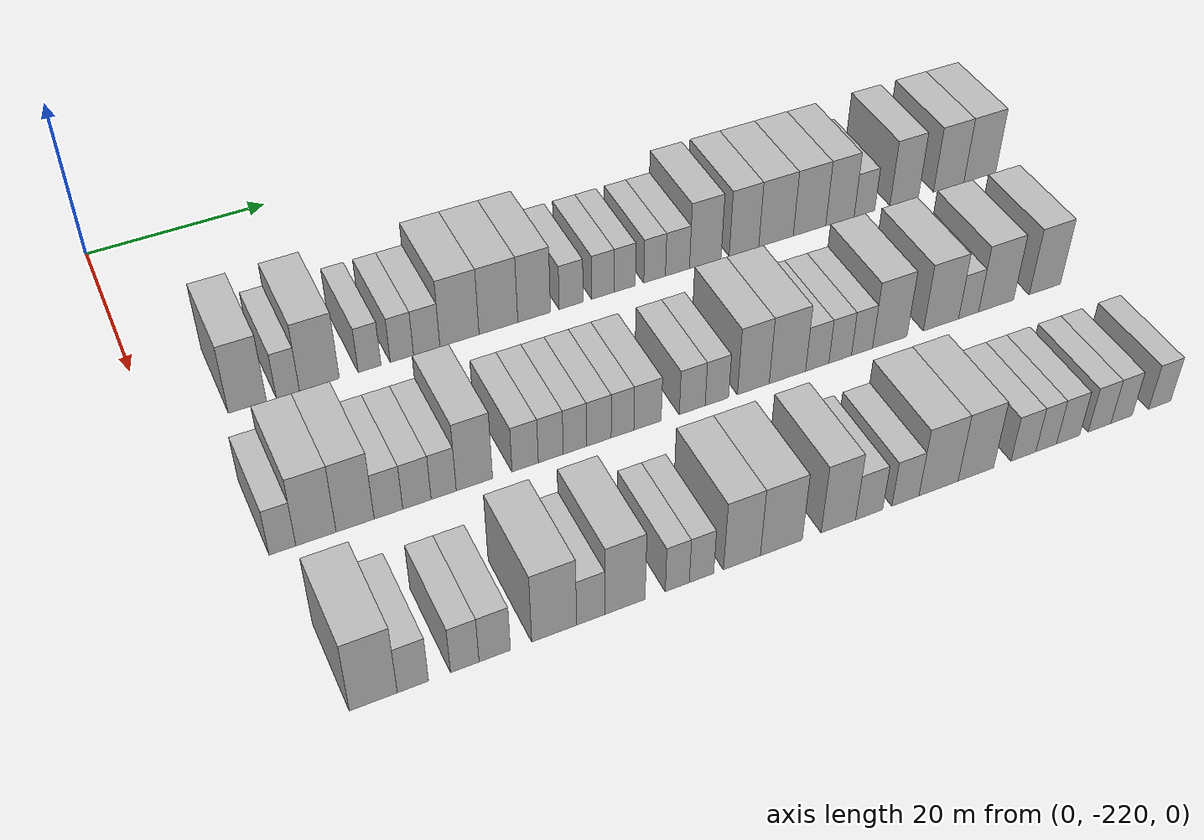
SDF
<sdf version="1.6">
 <world name="default">
  <model name="building_36">
   <static>1</static>
   <pose>25.0000 -210.6983 0 0.000000 0.000000 0.000000</pose>
   <link name="link">
    <pose>0 0 4.50 0 0 0</pose>
    <collision name="collision"><geometry><box><size>10.0000 3.9033 9.0000</size></box></geometry></collision>
    <visual name="visual">
     <cast_shadows>0</cast_shadows>
     <geometry><box><size>10.0000 3.9033 9.0000</size></box></geometry>
     <material>
      <script>
       <uri>model://HANNAS_wall/materials/scripts</uri>
       <uri>model://HANNAS_wall/materials/textures</uri>
       <name>vrc/HANNAS_wall</name>
      </script>
     </material>
    </visual>
   </link>
  </model>
  <model name="building_37">
   <static>1</static>
   <pose>25.0000 -206.5450 0 0.000000 0.000000 0.000000</pose>
   <link name="link">
    <pose>0 0 3.00 0 0 0</pose>
    <collision name="collision"><geometry><box><size>10.0000 2.4032 6.0000</size></box></geometry></collision>
    <visual name="visual">
     <cast_shadows>0</cast_shadows>
     <geometry><box><size>10.0000 2.4032 6.0000</size></box></geometry>
     <material>
      <script>
       <uri>model://HANNAS_wall/materials/scripts</uri>
       <uri>model://HANNAS_wall/materials/textures</uri>
       <name>vrc/HANNAS_wall</name>
      </script>
     </material>
    </visual>
   </link>
  </model>
  <model name="building_38">
   <static>1</static>
   <pose>25.0000 -203.2501 0 0.000000 0.000000 0.000000</pose>
   <link name="link">
    <pose>0 0 4.50 0 0 0</pose>
    <collision name="collision"><geometry><box><size>10.0000 4.1867 9.0000</size></box></geometry></collision>
    <visual name="visual">
     <cast_shadows>0</cast_shadows>
     <geometry><box><size>10.0000 4.1867 9.0000</size></box></geometry>
     <material>
      <script>
       <uri>model://HANNAS_wall/materials/scripts</uri>
       <uri>model://HANNAS_wall/materials/textures</uri>
       <name>vrc/HANNAS_wall</name>
      </script>
     </material>
    </visual>
   </link>
  </model>
  <model name="building_39">
   <static>1</static>
   <pose>25.0000 -197.9384 0 0.000000 0.000000 0.000000</pose>
   <link name="link">
    <pose>0 0 3.00 0 0 0</pose>
    <collision name="collision"><geometry><box><size>10.0000 2.4366 6.0000</size></box></geometry></collision>
    <visual name="visual">
     <cast_shadows>0</cast_shadows>
     <geometry><box><size>10.0000 2.4366 6.0000</size></box></geometry>
     <material>
      <script>
       <uri>model://HANNAS_wall/materials/scripts</uri>
       <uri>model://HANNAS_wall/materials/textures</uri>
       <name>vrc/HANNAS_wall</name>
      </script>
     </material>
    </visual>
   </link>
  </model>
  <model name="building_40">
   <static>1</static>
   <pose>25.0000 -194.4612 0 0.000000 0.000000 0.000000</pose>
   <link name="link">
    <pose>0 0 3.00 0 0 0</pose>
    <collision name="collision"><geometry><box><size>10.0000 2.5178 6.0000</size></box></geometry></collision>
    <visual name="visual">
     <cast_shadows>0</cast_shadows>
     <geometry><box><size>10.0000 2.5178 6.0000</size></box></geometry>
     <material>
      <script>
       <uri>model://HANNAS_wall/materials/scripts</uri>
       <uri>model://HANNAS_wall/materials/textures</uri>
       <name>vrc/HANNAS_wall</name>
      </script>
     </material>
    </visual>
   </link>
  </model>
  <model name="building_41">
   <static>1</static>
   <pose>25.0000 -191.7627 0 0.000000 0.000000 0.000000</pose>
   <link name="link">
    <pose>0 0 3.00 0 0 0</pose>
    <collision name="collision"><geometry><box><size>10.0000 2.8792 6.0000</size></box></geometry></collision>
    <visual name="visual">
     <cast_shadows>0</cast_shadows>
     <geometry><box><size>10.0000 2.8792 6.0000</size></box></geometry>
     <material>
      <script>
       <uri>model://HANNAS_wall/materials/scripts</uri>
       <uri>model://HANNAS_wall/materials/textures</uri>
       <name>vrc/HANNAS_wall</name>
      </script>
     </material>
    </visual>
   </link>
  </model>
  <model name="building_42">
   <static>1</static>
   <pose>25.0000 -188.1575 0 0.000000 0.000000 0.000000</pose>
   <link name="link">
    <pose>0 0 4.50 0 0 0</pose>
    <collision name="collision"><geometry><box><size>10.0000 4.3314 9.0000</size></box></geometry></collision>
    <visual name="visual">
     <cast_shadows>0</cast_shadows>
     <geometry><box><size>10.0000 4.3314 9.0000</size></box></geometry>
     <material>
      <script>
       <uri>model://HANNAS_wall/materials/scripts</uri>
       <uri>model://HANNAS_wall/materials/textures</uri>
       <name>vrc/HANNAS_wall</name>
      </script>
     </material>
    </visual>
   </link>
  </model>
  <model name="building_43">
   <static>1</static>
   <pose>25.0000 -183.8169 0 0.000000 0.000000 0.000000</pose>
   <link name="link">
    <pose>0 0 4.50 0 0 0</pose>
    <collision name="collision"><geometry><box><size>10.0000 4.3498 9.0000</size></box></geometry></collision>
    <visual name="visual">
     <cast_shadows>0</cast_shadows>
     <geometry><box><size>10.0000 4.3498 9.0000</size></box></geometry>
     <material>
      <script>
       <uri>model://HANNAS_wall/materials/scripts</uri>
       <uri>model://HANNAS_wall/materials/textures</uri>
       <name>vrc/HANNAS_wall</name>
      </script>
     </material>
    </visual>
   </link>
  </model>
  <model name="building_44">
   <static>1</static>
   <pose>25.0000 -179.7782 0 0.000000 0.000000 0.000000</pose>
   <link name="link">
    <pose>0 0 4.50 0 0 0</pose>
    <collision name="collision"><geometry><box><size>10.0000 3.7276 9.0000</size></box></geometry></collision>
    <visual name="visual">
     <cast_shadows>0</cast_shadows>
     <geometry><box><size>10.0000 3.7276 9.0000</size></box></geometry>
     <material>
      <script>
       <uri>model://HANNAS_wall/materials/scripts</uri>
       <uri>model://HANNAS_wall/materials/textures</uri>
       <name>vrc/HANNAS_wall</name>
      </script>
     </material>
    </visual>
   </link>
  </model>
  <model name="building_45">
   <static>1</static>
   <pose>25.0000 -175.5349 0 0.000000 0.000000 0.000000</pose>
   <link name="link">
    <pose>0 0 3.00 0 0 0</pose>
    <collision name="collision"><geometry><box><size>10.0000 2.7589 6.0000</size></box></geometry></collision>
    <visual name="visual">
     <cast_shadows>0</cast_shadows>
     <geometry><box><size>10.0000 2.7589 6.0000</size></box></geometry>
     <material>
      <script>
       <uri>model://HANNAS_wall/materials/scripts</uri>
       <uri>model://HANNAS_wall/materials/textures</uri>
       <name>vrc/HANNAS_wall</name>
      </script>
     </material>
    </visual>
   </link>
  </model>
  <model name="building_46">
   <static>1</static>
   <pose>25.0000 -171.8360 0 0.000000 0.000000 0.000000</pose>
   <link name="link">
    <pose>0 0 3.00 0 0 0</pose>
    <collision name="collision"><geometry><box><size>10.0000 2.6390 6.0000</size></box></geometry></collision>
    <visual name="visual">
     <cast_shadows>0</cast_shadows>
     <geometry><box><size>10.0000 2.6390 6.0000</size></box></geometry>
     <material>
      <script>
       <uri>model://HANNAS_wall/materials/scripts</uri>
       <uri>model://HANNAS_wall/materials/textures</uri>
       <name>vrc/HANNAS_wall</name>
      </script>
     </material>
    </visual>
   </link>
  </model>
  <model name="building_47">
   <static>1</static>
   <pose>25.0000 -169.2691 0 0.000000 0.000000 0.000000</pose>
   <link name="link">
    <pose>0 0 3.00 0 0 0</pose>
    <collision name="collision"><geometry><box><size>10.0000 2.4948 6.0000</size></box></geometry></collision>
    <visual name="visual">
     <cast_shadows>0</cast_shadows>
     <geometry><box><size>10.0000 2.4948 6.0000</size></box></geometry>
     <material>
      <script>
       <uri>model://HANNAS_wall/materials/scripts</uri>
       <uri>model://HANNAS_wall/materials/textures</uri>
       <name>vrc/HANNAS_wall</name>
      </script>
     </material>
    </visual>
   </link>
  </model>
  <model name="building_48">
   <static>1</static>
   <pose>25.0000 -165.7288 0 0.000000 0.000000 0.000000</pose>
   <link name="link">
    <pose>0 0 3.00 0 0 0</pose>
    <collision name="collision"><geometry><box><size>10.0000 2.5858 6.0000</size></box></geometry></collision>
    <visual name="visual">
     <cast_shadows>0</cast_shadows>
     <geometry><box><size>10.0000 2.5858 6.0000</size></box></geometry>
     <material>
      <script>
       <uri>model://HANNAS_wall/materials/scripts</uri>
       <uri>model://HANNAS_wall/materials/textures</uri>
       <name>vrc/HANNAS_wall</name>
      </script>
     </material>
    </visual>
   </link>
  </model>
  <model name="building_49">
   <static>1</static>
   <pose>25.0000 -162.9845 0 0.000000 0.000000 0.000000</pose>
   <link name="link">
    <pose>0 0 3.00 0 0 0</pose>
    <collision name="collision"><geometry><box><size>10.0000 2.9029 6.0000</size></box></geometry></collision>
    <visual name="visual">
     <cast_shadows>0</cast_shadows>
     <geometry><box><size>10.0000 2.9029 6.0000</size></box></geometry>
     <material>
      <script>
       <uri>model://HANNAS_wall/materials/scripts</uri>
       <uri>model://HANNAS_wall/materials/textures</uri>
       <name>vrc/HANNAS_wall</name>
      </script>
     </material>
    </visual>
   </link>
  </model>
  <model name="building_50">
   <static>1</static>
   <pose>25.0000 -159.6083 0 0.000000 0.000000 0.000000</pose>
   <link name="link">
    <pose>0 0 4.50 0 0 0</pose>
    <collision name="collision"><geometry><box><size>10.0000 3.8496 9.0000</size></box></geometry></collision>
    <visual name="visual">
     <cast_shadows>0</cast_shadows>
     <geometry><box><size>10.0000 3.8496 9.0000</size></box></geometry>
     <material>
      <script>
       <uri>model://HANNAS_wall/materials/scripts</uri>
       <uri>model://HANNAS_wall/materials/textures</uri>
       <name>vrc/HANNAS_wall</name>
      </script>
     </material>
    </visual>
   </link>
  </model>
  <model name="building_51">
   <static>1</static>
   <pose>25.0000 -154.8471 0 0.000000 0.000000 0.000000</pose>
   <link name="link">
    <pose>0 0 4.50 0 0 0</pose>
    <collision name="collision"><geometry><box><size>10.0000 3.6727 9.0000</size></box></geometry></collision>
    <visual name="visual">
     <cast_shadows>0</cast_shadows>
     <geometry><box><size>10.0000 3.6727 9.0000</size></box></geometry>
     <material>
      <script>
       <uri>model://HANNAS_wall/materials/scripts</uri>
       <uri>model://HANNAS_wall/materials/textures</uri>
       <name>vrc/HANNAS_wall</name>
      </script>
     </material>
    </visual>
   </link>
  </model>
  <model name="building_52">
   <static>1</static>
   <pose>25.0000 -150.8433 0 0.000000 0.000000 0.000000</pose>
   <link name="link">
    <pose>0 0 4.50 0 0 0</pose>
    <collision name="collision"><geometry><box><size>10.0000 4.3351 9.0000</size></box></geometry></collision>
    <visual name="visual">
     <cast_shadows>0</cast_shadows>
     <geometry><box><size>10.0000 4.3351 9.0000</size></box></geometry>
     <material>
      <script>
       <uri>model://HANNAS_wall/materials/scripts</uri>
       <uri>model://HANNAS_wall/materials/textures</uri>
       <name>vrc/HANNAS_wall</name>
      </script>
     </material>
    </visual>
   </link>
  </model>
  <model name="building_53">
   <static>1</static>
   <pose>25.0000 -146.6084 0 0.000000 0.000000 0.000000</pose>
   <link name="link">
    <pose>0 0 4.50 0 0 0</pose>
    <collision name="collision"><geometry><box><size>10.0000 4.1347 9.0000</size></box></geometry></collision>
    <visual name="visual">
     <cast_shadows>0</cast_shadows>
     <geometry><box><size>10.0000 4.1347 9.0000</size></box></geometry>
     <material>
      <script>
       <uri>model://HANNAS_wall/materials/scripts</uri>
       <uri>model://HANNAS_wall/materials/textures</uri>
       <name>vrc/HANNAS_wall</name>
      </script>
     </material>
    </visual>
   </link>
  </model>
  <model name="building_54">
   <static>1</static>
   <pose>25.0000 -142.7107 0 0.000000 0.000000 0.000000</pose>
   <link name="link">
    <pose>0 0 4.50 0 0 0</pose>
    <collision name="collision"><geometry><box><size>10.0000 3.6605 9.0000</size></box></geometry></collision>
    <visual name="visual">
     <cast_shadows>0</cast_shadows>
     <geometry><box><size>10.0000 3.6605 9.0000</size></box></geometry>
     <material>
      <script>
       <uri>model://HANNAS_wall/materials/scripts</uri>
       <uri>model://HANNAS_wall/materials/textures</uri>
       <name>vrc/HANNAS_wall</name>
      </script>
     </material>
    </visual>
   </link>
  </model>
  <model name="building_55">
   <static>1</static>
   <pose>25.0000 -139.5361 0 0.000000 0.000000 0.000000</pose>
   <link name="link">
    <pose>0 0 3.00 0 0 0</pose>
    <collision name="collision"><geometry><box><size>10.0000 2.6888 6.0000</size></box></geometry></collision>
    <visual name="visual">
     <cast_shadows>0</cast_shadows>
     <geometry><box><size>10.0000 2.6888 6.0000</size></box></geometry>
     <material>
      <script>
       <uri>model://HANNAS_wall/materials/scripts</uri>
       <uri>model://HANNAS_wall/materials/textures</uri>
       <name>vrc/HANNAS_wall</name>
      </script>
     </material>
    </visual>
   </link>
  </model>
  <model name="building_56">
   <static>1</static>
   <pose>25.0000 -134.2967 0 0.000000 0.000000 0.000000</pose>
   <link name="link">
    <pose>0 0 4.50 0 0 0</pose>
    <collision name="collision"><geometry><box><size>10.0000 3.7898 9.0000</size></box></geometry></collision>
    <visual name="visual">
     <cast_shadows>0</cast_shadows>
     <geometry><box><size>10.0000 3.7898 9.0000</size></box></geometry>
     <material>
      <script>
       <uri>model://HANNAS_wall/materials/scripts</uri>
       <uri>model://HANNAS_wall/materials/textures</uri>
       <name>vrc/HANNAS_wall</name>
      </script>
     </material>
    </visual>
   </link>
  </model>
  <model name="building_57">
   <static>1</static>
   <pose>25.0000 -128.3499 0 0.000000 0.000000 0.000000</pose>
   <link name="link">
    <pose>0 0 4.50 0 0 0</pose>
    <collision name="collision"><geometry><box><size>10.0000 4.1037 9.0000</size></box></geometry></collision>
    <visual name="visual">
     <cast_shadows>0</cast_shadows>
     <geometry><box><size>10.0000 4.1037 9.0000</size></box></geometry>
     <material>
      <script>
       <uri>model://HANNAS_wall/materials/scripts</uri>
       <uri>model://HANNAS_wall/materials/textures</uri>
       <name>vrc/HANNAS_wall</name>
      </script>
     </material>
    </visual>
   </link>
  </model>
  <model name="building_58">
   <static>1</static>
   <pose>25.0000 -124.1231 0 0.000000 0.000000 0.000000</pose>
   <link name="link">
    <pose>0 0 4.50 0 0 0</pose>
    <collision name="collision"><geometry><box><size>10.0000 4.3499 9.0000</size></box></geometry></collision>
    <visual name="visual">
     <cast_shadows>0</cast_shadows>
     <geometry><box><size>10.0000 4.3499 9.0000</size></box></geometry>
     <material>
      <script>
       <uri>model://HANNAS_wall/materials/scripts</uri>
       <uri>model://HANNAS_wall/materials/textures</uri>
       <name>vrc/HANNAS_wall</name>
      </script>
     </material>
    </visual>
   </link>
  </model>
  <model name="building_210">
   <static>1</static>
   <pose>44.0000 -212.9855 0 0.000000 0.000000 0.000000</pose>
   <link name="link">
    <pose>0 0 3.00 0 0 0</pose>
    <collision name="collision"><geometry><box><size>10.0000 2.5453 6.0000</size></box></geometry></collision>
    <visual name="visual">
     <cast_shadows>0</cast_shadows>
     <geometry><box><size>10.0000 2.5453 6.0000</size></box></geometry>
     <material>
      <script>
       <uri>model://HANNAS_wall/materials/scripts</uri>
       <uri>model://HANNAS_wall/materials/textures</uri>
       <name>vrc/HANNAS_wall</name>
      </script>
     </material>
    </visual>
   </link>
  </model>
  <model name="building_211">
   <static>1</static>
   <pose>44.0000 -209.7830 0 0.000000 0.000000 0.000000</pose>
   <link name="link">
    <pose>0 0 4.50 0 0 0</pose>
    <collision name="collision"><geometry><box><size>10.0000 3.8596 9.0000</size></box></geometry></collision>
    <visual name="visual">
     <cast_shadows>0</cast_shadows>
     <geometry><box><size>10.0000 3.8596 9.0000</size></box></geometry>
     <material>
      <script>
       <uri>model://HANNAS_wall/materials/scripts</uri>
       <uri>model://HANNAS_wall/materials/textures</uri>
       <name>vrc/HANNAS_wall</name>
      </script>
     </material>
    </visual>
   </link>
  </model>
  <model name="building_212">
   <static>1</static>
   <pose>44.0000 -205.9985 0 0.000000 0.000000 0.000000</pose>
   <link name="link">
    <pose>0 0 4.50 0 0 0</pose>
    <collision name="collision"><geometry><box><size>10.0000 3.7094 9.0000</size></box></geometry></collision>
    <visual name="visual">
     <cast_shadows>0</cast_shadows>
     <geometry><box><size>10.0000 3.7094 9.0000</size></box></geometry>
     <material>
      <script>
       <uri>model://HANNAS_wall/materials/scripts</uri>
       <uri>model://HANNAS_wall/materials/textures</uri>
       <name>vrc/HANNAS_wall</name>
      </script>
     </material>
    </visual>
   </link>
  </model>
  <model name="building_213">
   <static>1</static>
   <pose>44.0000 -202.7375 0 0.000000 0.000000 0.000000</pose>
   <link name="link">
    <pose>0 0 3.00 0 0 0</pose>
    <collision name="collision"><geometry><box><size>10.0000 2.8127 6.0000</size></box></geometry></collision>
    <visual name="visual">
     <cast_shadows>0</cast_shadows>
     <geometry><box><size>10.0000 2.8127 6.0000</size></box></geometry>
     <material>
      <script>
       <uri>model://HANNAS_wall/materials/scripts</uri>
       <uri>model://HANNAS_wall/materials/textures</uri>
       <name>vrc/HANNAS_wall</name>
      </script>
     </material>
    </visual>
   </link>
  </model>
  <model name="building_214">
   <static>1</static>
   <pose>44.0000 -199.9171 0 0.000000 0.000000 0.000000</pose>
   <link name="link">
    <pose>0 0 3.00 0 0 0</pose>
    <collision name="collision"><geometry><box><size>10.0000 2.8281 6.0000</size></box></geometry></collision>
    <visual name="visual">
     <cast_shadows>0</cast_shadows>
     <geometry><box><size>10.0000 2.8281 6.0000</size></box></geometry>
     <material>
      <script>
       <uri>model://HANNAS_wall/materials/scripts</uri>
       <uri>model://HANNAS_wall/materials/textures</uri>
       <name>vrc/HANNAS_wall</name>
      </script>
     </material>
    </visual>
   </link>
  </model>
  <model name="building_215">
   <static>1</static>
   <pose>44.0000 -197.2365 0 0.000000 0.000000 0.000000</pose>
   <link name="link">
    <pose>0 0 3.00 0 0 0</pose>
    <collision name="collision"><geometry><box><size>10.0000 2.5333 6.0000</size></box></geometry></collision>
    <visual name="visual">
     <cast_shadows>0</cast_shadows>
     <geometry><box><size>10.0000 2.5333 6.0000</size></box></geometry>
     <material>
      <script>
       <uri>model://HANNAS_wall/materials/scripts</uri>
       <uri>model://HANNAS_wall/materials/textures</uri>
       <name>vrc/HANNAS_wall</name>
      </script>
     </material>
    </visual>
   </link>
  </model>
  <model name="building_216">
   <static>1</static>
   <pose>44.0000 -194.1221 0 0.000000 0.000000 0.000000</pose>
   <link name="link">
    <pose>0 0 4.50 0 0 0</pose>
    <collision name="collision"><geometry><box><size>10.0000 3.6955 9.0000</size></box></geometry></collision>
    <visual name="visual">
     <cast_shadows>0</cast_shadows>
     <geometry><box><size>10.0000 3.6955 9.0000</size></box></geometry>
     <material>
      <script>
       <uri>model://HANNAS_wall/materials/scripts</uri>
       <uri>model://HANNAS_wall/materials/textures</uri>
       <name>vrc/HANNAS_wall</name>
      </script>
     </material>
    </visual>
   </link>
  </model>
  <model name="building_217">
   <static>1</static>
   <pose>44.0000 -188.9054 0 0.000000 0.000000 0.000000</pose>
   <link name="link">
    <pose>0 0 3.00 0 0 0</pose>
    <collision name="collision"><geometry><box><size>10.0000 2.7379 6.0000</size></box></geometry></collision>
    <visual name="visual">
     <cast_shadows>0</cast_shadows>
     <geometry><box><size>10.0000 2.7379 6.0000</size></box></geometry>
     <material>
      <script>
       <uri>model://HANNAS_wall/materials/scripts</uri>
       <uri>model://HANNAS_wall/materials/textures</uri>
       <name>vrc/HANNAS_wall</name>
      </script>
     </material>
    </visual>
   </link>
  </model>
  <model name="building_218">
   <static>1</static>
   <pose>44.0000 -186.2267 0 0.000000 0.000000 0.000000</pose>
   <link name="link">
    <pose>0 0 3.00 0 0 0</pose>
    <collision name="collision"><geometry><box><size>10.0000 2.6193 6.0000</size></box></geometry></collision>
    <visual name="visual">
     <cast_shadows>0</cast_shadows>
     <geometry><box><size>10.0000 2.6193 6.0000</size></box></geometry>
     <material>
      <script>
       <uri>model://HANNAS_wall/materials/scripts</uri>
       <uri>model://HANNAS_wall/materials/textures</uri>
       <name>vrc/HANNAS_wall</name>
      </script>
     </material>
    </visual>
   </link>
  </model>
  <model name="building_219">
   <static>1</static>
   <pose>44.0000 -183.6822 0 0.000000 0.000000 0.000000</pose>
   <link name="link">
    <pose>0 0 3.00 0 0 0</pose>
    <collision name="collision"><geometry><box><size>10.0000 2.4697 6.0000</size></box></geometry></collision>
    <visual name="visual">
     <cast_shadows>0</cast_shadows>
     <geometry><box><size>10.0000 2.4697 6.0000</size></box></geometry>
     <material>
      <script>
       <uri>model://HANNAS_wall/materials/scripts</uri>
       <uri>model://HANNAS_wall/materials/textures</uri>
       <name>vrc/HANNAS_wall</name>
      </script>
     </material>
    </visual>
   </link>
  </model>
  <model name="building_220">
   <static>1</static>
   <pose>44.0000 -181.1327 0 0.000000 0.000000 0.000000</pose>
   <link name="link">
    <pose>0 0 3.00 0 0 0</pose>
    <collision name="collision"><geometry><box><size>10.0000 2.6291 6.0000</size></box></geometry></collision>
    <visual name="visual">
     <cast_shadows>0</cast_shadows>
     <geometry><box><size>10.0000 2.6291 6.0000</size></box></geometry>
     <material>
      <script>
       <uri>model://HANNAS_wall/materials/scripts</uri>
       <uri>model://HANNAS_wall/materials/textures</uri>
       <name>vrc/HANNAS_wall</name>
      </script>
     </material>
    </visual>
   </link>
  </model>
  <model name="building_221">
   <static>1</static>
   <pose>44.0000 -178.5950 0 0.000000 0.000000 0.000000</pose>
   <link name="link">
    <pose>0 0 3.00 0 0 0</pose>
    <collision name="collision"><geometry><box><size>10.0000 2.4464 6.0000</size></box></geometry></collision>
    <visual name="visual">
     <cast_shadows>0</cast_shadows>
     <geometry><box><size>10.0000 2.4464 6.0000</size></box></geometry>
     <material>
      <script>
       <uri>model://HANNAS_wall/materials/scripts</uri>
       <uri>model://HANNAS_wall/materials/textures</uri>
       <name>vrc/HANNAS_wall</name>
      </script>
     </material>
    </visual>
   </link>
  </model>
  <model name="building_222">
   <static>1</static>
   <pose>44.0000 -175.8815 0 0.000000 0.000000 0.000000</pose>
   <link name="link">
    <pose>0 0 3.00 0 0 0</pose>
    <collision name="collision"><geometry><box><size>10.0000 2.9805 6.0000</size></box></geometry></collision>
    <visual name="visual">
     <cast_shadows>0</cast_shadows>
     <geometry><box><size>10.0000 2.9805 6.0000</size></box></geometry>
     <material>
      <script>
       <uri>model://HANNAS_wall/materials/scripts</uri>
       <uri>model://HANNAS_wall/materials/textures</uri>
       <name>vrc/HANNAS_wall</name>
      </script>
     </material>
    </visual>
   </link>
  </model>
  <model name="building_223">
   <static>1</static>
   <pose>44.0000 -170.9575 0 0.000000 0.000000 0.000000</pose>
   <link name="link">
    <pose>0 0 3.00 0 0 0</pose>
    <collision name="collision"><geometry><box><size>10.0000 2.8676 6.0000</size></box></geometry></collision>
    <visual name="visual">
     <cast_shadows>0</cast_shadows>
     <geometry><box><size>10.0000 2.8676 6.0000</size></box></geometry>
     <material>
      <script>
       <uri>model://HANNAS_wall/materials/scripts</uri>
       <uri>model://HANNAS_wall/materials/textures</uri>
       <name>vrc/HANNAS_wall</name>
      </script>
     </material>
    </visual>
   </link>
  </model>
  <model name="building_224">
   <static>1</static>
   <pose>44.0000 -168.2086 0 0.000000 0.000000 0.000000</pose>
   <link name="link">
    <pose>0 0 3.00 0 0 0</pose>
    <collision name="collision"><geometry><box><size>10.0000 2.6301 6.0000</size></box></geometry></collision>
    <visual name="visual">
     <cast_shadows>0</cast_shadows>
     <geometry><box><size>10.0000 2.6301 6.0000</size></box></geometry>
     <material>
      <script>
       <uri>model://HANNAS_wall/materials/scripts</uri>
       <uri>model://HANNAS_wall/materials/textures</uri>
       <name>vrc/HANNAS_wall</name>
      </script>
     </material>
    </visual>
   </link>
  </model>
  <model name="building_225">
   <static>1</static>
   <pose>44.0000 -164.0820 0 0.000000 0.000000 0.000000</pose>
   <link name="link">
    <pose>0 0 4.50 0 0 0</pose>
    <collision name="collision"><geometry><box><size>10.0000 3.6231 9.0000</size></box></geometry></collision>
    <visual name="visual">
     <cast_shadows>0</cast_shadows>
     <geometry><box><size>10.0000 3.6231 9.0000</size></box></geometry>
     <material>
      <script>
       <uri>model://HANNAS_wall/materials/scripts</uri>
       <uri>model://HANNAS_wall/materials/textures</uri>
       <name>vrc/HANNAS_wall</name>
      </script>
     </material>
    </visual>
   </link>
  </model>
  <model name="building_226">
   <static>1</static>
   <pose>44.0000 -160.1665 0 0.000000 0.000000 0.000000</pose>
   <link name="link">
    <pose>0 0 4.50 0 0 0</pose>
    <collision name="collision"><geometry><box><size>10.0000 4.2078 9.0000</size></box></geometry></collision>
    <visual name="visual">
     <cast_shadows>0</cast_shadows>
     <geometry><box><size>10.0000 4.2078 9.0000</size></box></geometry>
     <material>
      <script>
       <uri>model://HANNAS_wall/materials/scripts</uri>
       <uri>model://HANNAS_wall/materials/textures</uri>
       <name>vrc/HANNAS_wall</name>
      </script>
     </material>
    </visual>
   </link>
  </model>
  <model name="building_227">
   <static>1</static>
   <pose>44.0000 -156.7047 0 0.000000 0.000000 0.000000</pose>
   <link name="link">
    <pose>0 0 3.00 0 0 0</pose>
    <collision name="collision"><geometry><box><size>10.0000 2.7157 6.0000</size></box></geometry></collision>
    <visual name="visual">
     <cast_shadows>0</cast_shadows>
     <geometry><box><size>10.0000 2.7157 6.0000</size></box></geometry>
     <material>
      <script>
       <uri>model://HANNAS_wall/materials/scripts</uri>
       <uri>model://HANNAS_wall/materials/textures</uri>
       <name>vrc/HANNAS_wall</name>
      </script>
     </material>
    </visual>
   </link>
  </model>
  <model name="building_228">
   <static>1</static>
   <pose>44.0000 -154.0117 0 0.000000 0.000000 0.000000</pose>
   <link name="link">
    <pose>0 0 3.00 0 0 0</pose>
    <collision name="collision"><geometry><box><size>10.0000 2.6704 6.0000</size></box></geometry></collision>
    <visual name="visual">
     <cast_shadows>0</cast_shadows>
     <geometry><box><size>10.0000 2.6704 6.0000</size></box></geometry>
     <material>
      <script>
       <uri>model://HANNAS_wall/materials/scripts</uri>
       <uri>model://HANNAS_wall/materials/textures</uri>
       <name>vrc/HANNAS_wall</name>
      </script>
     </material>
    </visual>
   </link>
  </model>
  <model name="building_229">
   <static>1</static>
   <pose>44.0000 -151.4245 0 0.000000 0.000000 0.000000</pose>
   <link name="link">
    <pose>0 0 3.00 0 0 0</pose>
    <collision name="collision"><geometry><box><size>10.0000 2.5039 6.0000</size></box></geometry></collision>
    <visual name="visual">
     <cast_shadows>0</cast_shadows>
     <geometry><box><size>10.0000 2.5039 6.0000</size></box></geometry>
     <material>
      <script>
       <uri>model://HANNAS_wall/materials/scripts</uri>
       <uri>model://HANNAS_wall/materials/textures</uri>
       <name>vrc/HANNAS_wall</name>
      </script>
     </material>
    </visual>
   </link>
  </model>
  <model name="building_230">
   <static>1</static>
   <pose>44.0000 -148.0892 0 0.000000 0.000000 0.000000</pose>
   <link name="link">
    <pose>0 0 4.50 0 0 0</pose>
    <collision name="collision"><geometry><box><size>10.0000 4.1665 9.0000</size></box></geometry></collision>
    <visual name="visual">
     <cast_shadows>0</cast_shadows>
     <geometry><box><size>10.0000 4.1665 9.0000</size></box></geometry>
     <material>
      <script>
       <uri>model://HANNAS_wall/materials/scripts</uri>
       <uri>model://HANNAS_wall/materials/textures</uri>
       <name>vrc/HANNAS_wall</name>
      </script>
     </material>
    </visual>
   </link>
  </model>
  <model name="building_231">
   <static>1</static>
   <pose>44.0000 -141.8376 0 0.000000 0.000000 0.000000</pose>
   <link name="link">
    <pose>0 0 4.50 0 0 0</pose>
    <collision name="collision"><geometry><box><size>10.0000 4.3368 9.0000</size></box></geometry></collision>
    <visual name="visual">
     <cast_shadows>0</cast_shadows>
     <geometry><box><size>10.0000 4.3368 9.0000</size></box></geometry>
     <material>
      <script>
       <uri>model://HANNAS_wall/materials/scripts</uri>
       <uri>model://HANNAS_wall/materials/textures</uri>
       <name>vrc/HANNAS_wall</name>
      </script>
     </material>
    </visual>
   </link>
  </model>
  <model name="building_232">
   <static>1</static>
   <pose>44.0000 -138.4222 0 0.000000 0.000000 0.000000</pose>
   <link name="link">
    <pose>0 0 3.00 0 0 0</pose>
    <collision name="collision"><geometry><box><size>10.0000 2.4939 6.0000</size></box></geometry></collision>
    <visual name="visual">
     <cast_shadows>0</cast_shadows>
     <geometry><box><size>10.0000 2.4939 6.0000</size></box></geometry>
     <material>
      <script>
       <uri>model://HANNAS_wall/materials/scripts</uri>
       <uri>model://HANNAS_wall/materials/textures</uri>
       <name>vrc/HANNAS_wall</name>
      </script>
     </material>
    </visual>
   </link>
  </model>
  <model name="building_233">
   <static>1</static>
   <pose>44.0000 -134.9652 0 0.000000 0.000000 0.000000</pose>
   <link name="link">
    <pose>0 0 4.50 0 0 0</pose>
    <collision name="collision"><geometry><box><size>10.0000 4.4202 9.0000</size></box></geometry></collision>
    <visual name="visual">
     <cast_shadows>0</cast_shadows>
     <geometry><box><size>10.0000 4.4202 9.0000</size></box></geometry>
     <material>
      <script>
       <uri>model://HANNAS_wall/materials/scripts</uri>
       <uri>model://HANNAS_wall/materials/textures</uri>
       <name>vrc/HANNAS_wall</name>
      </script>
     </material>
    </visual>
   </link>
  </model>
  <model name="building_234">
   <static>1</static>
   <pose>44.0000 -128.7431 0 0.000000 0.000000 0.000000</pose>
   <link name="link">
    <pose>0 0 4.50 0 0 0</pose>
    <collision name="collision"><geometry><box><size>10.0000 4.0239 9.0000</size></box></geometry></collision>
    <visual name="visual">
     <cast_shadows>0</cast_shadows>
     <geometry><box><size>10.0000 4.0239 9.0000</size></box></geometry>
     <material>
      <script>
       <uri>model://HANNAS_wall/materials/scripts</uri>
       <uri>model://HANNAS_wall/materials/textures</uri>
       <name>vrc/HANNAS_wall</name>
      </script>
     </material>
    </visual>
   </link>
  </model>
  <model name="building_386">
   <static>1</static>
   <pose>63.0000 -210.9222 0 0.000000 0.000000 0.000000</pose>
   <link name="link">
    <pose>0 0 4.50 0 0 0</pose>
    <collision name="collision"><geometry><box><size>10.0000 4.2817 9.0000</size></box></geometry></collision>
    <visual name="visual">
     <cast_shadows>0</cast_shadows>
     <geometry><box><size>10.0000 4.2817 9.0000</size></box></geometry>
     <material>
      <script>
       <uri>model://HANNAS_wall/materials/scripts</uri>
       <uri>model://HANNAS_wall/materials/textures</uri>
       <name>vrc/HANNAS_wall</name>
      </script>
     </material>
    </visual>
   </link>
  </model>
  <model name="building_387">
   <static>1</static>
   <pose>63.0000 -207.3700 0 0.000000 0.000000 0.000000</pose>
   <link name="link">
    <pose>0 0 3.00 0 0 0</pose>
    <collision name="collision"><geometry><box><size>10.0000 2.8228 6.0000</size></box></geometry></collision>
    <visual name="visual">
     <cast_shadows>0</cast_shadows>
     <geometry><box><size>10.0000 2.8228 6.0000</size></box></geometry>
     <material>
      <script>
       <uri>model://HANNAS_wall/materials/scripts</uri>
       <uri>model://HANNAS_wall/materials/textures</uri>
       <name>vrc/HANNAS_wall</name>
      </script>
     </material>
    </visual>
   </link>
  </model>
  <model name="building_388">
   <static>1</static>
   <pose>63.0000 -202.6408 0 0.000000 0.000000 0.000000</pose>
   <link name="link">
    <pose>0 0 3.00 0 0 0</pose>
    <collision name="collision"><geometry><box><size>10.0000 2.6356 6.0000</size></box></geometry></collision>
    <visual name="visual">
     <cast_shadows>0</cast_shadows>
     <geometry><box><size>10.0000 2.6356 6.0000</size></box></geometry>
     <material>
      <script>
       <uri>model://HANNAS_wall/materials/scripts</uri>
       <uri>model://HANNAS_wall/materials/textures</uri>
       <name>vrc/HANNAS_wall</name>
      </script>
     </material>
    </visual>
   </link>
  </model>
  <model name="building_389">
   <static>1</static>
   <pose>63.0000 -199.8609 0 0.000000 0.000000 0.000000</pose>
   <link name="link">
    <pose>0 0 3.00 0 0 0</pose>
    <collision name="collision"><geometry><box><size>10.0000 2.9242 6.0000</size></box></geometry></collision>
    <visual name="visual">
     <cast_shadows>0</cast_shadows>
     <geometry><box><size>10.0000 2.9242 6.0000</size></box></geometry>
     <material>
      <script>
       <uri>model://HANNAS_wall/materials/scripts</uri>
       <uri>model://HANNAS_wall/materials/textures</uri>
       <name>vrc/HANNAS_wall</name>
      </script>
     </material>
    </visual>
   </link>
  </model>
  <model name="building_390">
   <static>1</static>
   <pose>63.0000 -194.2559 0 0.000000 0.000000 0.000000</pose>
   <link name="link">
    <pose>0 0 4.50 0 0 0</pose>
    <collision name="collision"><geometry><box><size>10.0000 4.2859 9.0000</size></box></geometry></collision>
    <visual name="visual">
     <cast_shadows>0</cast_shadows>
     <geometry><box><size>10.0000 4.2859 9.0000</size></box></geometry>
     <material>
      <script>
       <uri>model://HANNAS_wall/materials/scripts</uri>
       <uri>model://HANNAS_wall/materials/textures</uri>
       <name>vrc/HANNAS_wall</name>
      </script>
     </material>
    </visual>
   </link>
  </model>
  <model name="building_391">
   <static>1</static>
   <pose>63.0000 -190.7385 0 0.000000 0.000000 0.000000</pose>
   <link name="link">
    <pose>0 0 3.00 0 0 0</pose>
    <collision name="collision"><geometry><box><size>10.0000 2.7488 6.0000</size></box></geometry></collision>
    <visual name="visual">
     <cast_shadows>0</cast_shadows>
     <geometry><box><size>10.0000 2.7488 6.0000</size></box></geometry>
     <material>
      <script>
       <uri>model://HANNAS_wall/materials/scripts</uri>
       <uri>model://HANNAS_wall/materials/textures</uri>
       <name>vrc/HANNAS_wall</name>
      </script>
     </material>
    </visual>
   </link>
  </model>
  <model name="building_392">
   <static>1</static>
   <pose>63.0000 -187.3959 0 0.000000 0.000000 0.000000</pose>
   <link name="link">
    <pose>0 0 4.50 0 0 0</pose>
    <collision name="collision"><geometry><box><size>10.0000 3.9365 9.0000</size></box></geometry></collision>
    <visual name="visual">
     <cast_shadows>0</cast_shadows>
     <geometry><box><size>10.0000 3.9365 9.0000</size></box></geometry>
     <material>
      <script>
       <uri>model://HANNAS_wall/materials/scripts</uri>
       <uri>model://HANNAS_wall/materials/textures</uri>
       <name>vrc/HANNAS_wall</name>
      </script>
     </material>
    </visual>
   </link>
  </model>
  <model name="building_393">
   <static>1</static>
   <pose>63.0000 -182.2248 0 0.000000 0.000000 0.000000</pose>
   <link name="link">
    <pose>0 0 3.00 0 0 0</pose>
    <collision name="collision"><geometry><box><size>10.0000 2.4058 6.0000</size></box></geometry></collision>
    <visual name="visual">
     <cast_shadows>0</cast_shadows>
     <geometry><box><size>10.0000 2.4058 6.0000</size></box></geometry>
     <material>
      <script>
       <uri>model://HANNAS_wall/materials/scripts</uri>
       <uri>model://HANNAS_wall/materials/textures</uri>
       <name>vrc/HANNAS_wall</name>
      </script>
     </material>
    </visual>
   </link>
  </model>
  <model name="building_394">
   <static>1</static>
   <pose>63.0000 -179.7876 0 0.000000 0.000000 0.000000</pose>
   <link name="link">
    <pose>0 0 3.00 0 0 0</pose>
    <collision name="collision"><geometry><box><size>10.0000 2.4686 6.0000</size></box></geometry></collision>
    <visual name="visual">
     <cast_shadows>0</cast_shadows>
     <geometry><box><size>10.0000 2.4686 6.0000</size></box></geometry>
     <material>
      <script>
       <uri>model://HANNAS_wall/materials/scripts</uri>
       <uri>model://HANNAS_wall/materials/textures</uri>
       <name>vrc/HANNAS_wall</name>
      </script>
     </material>
    </visual>
   </link>
  </model>
  <model name="building_395">
   <static>1</static>
   <pose>63.0000 -175.6548 0 0.000000 0.000000 0.000000</pose>
   <link name="link">
    <pose>0 0 4.50 0 0 0</pose>
    <collision name="collision"><geometry><box><size>10.0000 3.7970 9.0000</size></box></geometry></collision>
    <visual name="visual">
     <cast_shadows>0</cast_shadows>
     <geometry><box><size>10.0000 3.7970 9.0000</size></box></geometry>
     <material>
      <script>
       <uri>model://HANNAS_wall/materials/scripts</uri>
       <uri>model://HANNAS_wall/materials/textures</uri>
       <name>vrc/HANNAS_wall</name>
      </script>
     </material>
    </visual>
   </link>
  </model>
  <model name="building_396">
   <static>1</static>
   <pose>63.0000 -171.5648 0 0.000000 0.000000 0.000000</pose>
   <link name="link">
    <pose>0 0 4.50 0 0 0</pose>
    <collision name="collision"><geometry><box><size>10.0000 4.3831 9.0000</size></box></geometry></collision>
    <visual name="visual">
     <cast_shadows>0</cast_shadows>
     <geometry><box><size>10.0000 4.3831 9.0000</size></box></geometry>
     <material>
      <script>
       <uri>model://HANNAS_wall/materials/scripts</uri>
       <uri>model://HANNAS_wall/materials/textures</uri>
       <name>vrc/HANNAS_wall</name>
      </script>
     </material>
    </visual>
   </link>
  </model>
  <model name="building_397">
   <static>1</static>
   <pose>63.0000 -165.5287 0 0.000000 0.000000 0.000000</pose>
   <link name="link">
    <pose>0 0 4.50 0 0 0</pose>
    <collision name="collision"><geometry><box><size>10.0000 3.6891 9.0000</size></box></geometry></collision>
    <visual name="visual">
     <cast_shadows>0</cast_shadows>
     <geometry><box><size>10.0000 3.6891 9.0000</size></box></geometry>
     <material>
      <script>
       <uri>model://HANNAS_wall/materials/scripts</uri>
       <uri>model://HANNAS_wall/materials/textures</uri>
       <name>vrc/HANNAS_wall</name>
      </script>
     </material>
    </visual>
   </link>
  </model>
  <model name="building_398">
   <static>1</static>
   <pose>63.0000 -162.2090 0 0.000000 0.000000 0.000000</pose>
   <link name="link">
    <pose>0 0 3.00 0 0 0</pose>
    <collision name="collision"><geometry><box><size>10.0000 2.9504 6.0000</size></box></geometry></collision>
    <visual name="visual">
     <cast_shadows>0</cast_shadows>
     <geometry><box><size>10.0000 2.9504 6.0000</size></box></geometry>
     <material>
      <script>
       <uri>model://HANNAS_wall/materials/scripts</uri>
       <uri>model://HANNAS_wall/materials/textures</uri>
       <name>vrc/HANNAS_wall</name>
      </script>
     </material>
    </visual>
   </link>
  </model>
  <model name="building_399">
   <static>1</static>
   <pose>63.0000 -158.2439 0 0.000000 0.000000 0.000000</pose>
   <link name="link">
    <pose>0 0 3.00 0 0 0</pose>
    <collision name="collision"><geometry><box><size>10.0000 2.9798 6.0000</size></box></geometry></collision>
    <visual name="visual">
     <cast_shadows>0</cast_shadows>
     <geometry><box><size>10.0000 2.9798 6.0000</size></box></geometry>
     <material>
      <script>
       <uri>model://HANNAS_wall/materials/scripts</uri>
       <uri>model://HANNAS_wall/materials/textures</uri>
       <name>vrc/HANNAS_wall</name>
      </script>
     </material>
    </visual>
   </link>
  </model>
  <model name="building_400">
   <static>1</static>
   <pose>63.0000 -154.5669 0 0.000000 0.000000 0.000000</pose>
   <link name="link">
    <pose>0 0 4.50 0 0 0</pose>
    <collision name="collision"><geometry><box><size>10.0000 4.3741 9.0000</size></box></geometry></collision>
    <visual name="visual">
     <cast_shadows>0</cast_shadows>
     <geometry><box><size>10.0000 4.3741 9.0000</size></box></geometry>
     <material>
      <script>
       <uri>model://HANNAS_wall/materials/scripts</uri>
       <uri>model://HANNAS_wall/materials/textures</uri>
       <name>vrc/HANNAS_wall</name>
      </script>
     </material>
    </visual>
   </link>
  </model>
  <model name="building_401">
   <static>1</static>
   <pose>63.0000 -150.3613 0 0.000000 0.000000 0.000000</pose>
   <link name="link">
    <pose>0 0 4.50 0 0 0</pose>
    <collision name="collision"><geometry><box><size>10.0000 4.0370 9.0000</size></box></geometry></collision>
    <visual name="visual">
     <cast_shadows>0</cast_shadows>
     <geometry><box><size>10.0000 4.0370 9.0000</size></box></geometry>
     <material>
      <script>
       <uri>model://HANNAS_wall/materials/scripts</uri>
       <uri>model://HANNAS_wall/materials/textures</uri>
       <name>vrc/HANNAS_wall</name>
      </script>
     </material>
    </visual>
   </link>
  </model>
  <model name="building_402">
   <static>1</static>
   <pose>63.0000 -144.9012 0 0.000000 0.000000 0.000000</pose>
   <link name="link">
    <pose>0 0 3.00 0 0 0</pose>
    <collision name="collision"><geometry><box><size>10.0000 2.8833 6.0000</size></box></geometry></collision>
    <visual name="visual">
     <cast_shadows>0</cast_shadows>
     <geometry><box><size>10.0000 2.8833 6.0000</size></box></geometry>
     <material>
      <script>
       <uri>model://HANNAS_wall/materials/scripts</uri>
       <uri>model://HANNAS_wall/materials/textures</uri>
       <name>vrc/HANNAS_wall</name>
      </script>
     </material>
    </visual>
   </link>
  </model>
  <model name="building_403">
   <static>1</static>
   <pose>63.0000 -142.2491 0 0.000000 0.000000 0.000000</pose>
   <link name="link">
    <pose>0 0 3.00 0 0 0</pose>
    <collision name="collision"><geometry><box><size>10.0000 2.4209 6.0000</size></box></geometry></collision>
    <visual name="visual">
     <cast_shadows>0</cast_shadows>
     <geometry><box><size>10.0000 2.4209 6.0000</size></box></geometry>
     <material>
      <script>
       <uri>model://HANNAS_wall/materials/scripts</uri>
       <uri>model://HANNAS_wall/materials/textures</uri>
       <name>vrc/HANNAS_wall</name>
      </script>
     </material>
    </visual>
   </link>
  </model>
  <model name="building_404">
   <static>1</static>
   <pose>63.0000 -139.6638 0 0.000000 0.000000 0.000000</pose>
   <link name="link">
    <pose>0 0 3.00 0 0 0</pose>
    <collision name="collision"><geometry><box><size>10.0000 2.7496 6.0000</size></box></geometry></collision>
    <visual name="visual">
     <cast_shadows>0</cast_shadows>
     <geometry><box><size>10.0000 2.7496 6.0000</size></box></geometry>
     <material>
      <script>
       <uri>model://HANNAS_wall/materials/scripts</uri>
       <uri>model://HANNAS_wall/materials/textures</uri>
       <name>vrc/HANNAS_wall</name>
      </script>
     </material>
    </visual>
   </link>
  </model>
  <model name="building_405">
   <static>1</static>
   <pose>63.0000 -135.9276 0 0.000000 0.000000 0.000000</pose>
   <link name="link">
    <pose>0 0 3.00 0 0 0</pose>
    <collision name="collision"><geometry><box><size>10.0000 2.7230 6.0000</size></box></geometry></collision>
    <visual name="visual">
     <cast_shadows>0</cast_shadows>
     <geometry><box><size>10.0000 2.7230 6.0000</size></box></geometry>
     <material>
      <script>
       <uri>model://HANNAS_wall/materials/scripts</uri>
       <uri>model://HANNAS_wall/materials/textures</uri>
       <name>vrc/HANNAS_wall</name>
      </script>
     </material>
    </visual>
   </link>
  </model>
  <model name="building_406">
   <static>1</static>
   <pose>63.0000 -133.2764 0 0.000000 0.000000 0.000000</pose>
   <link name="link">
    <pose>0 0 3.00 0 0 0</pose>
    <collision name="collision"><geometry><box><size>10.0000 2.5793 6.0000</size></box></geometry></collision>
    <visual name="visual">
     <cast_shadows>0</cast_shadows>
     <geometry><box><size>10.0000 2.5793 6.0000</size></box></geometry>
     <material>
      <script>
       <uri>model://HANNAS_wall/materials/scripts</uri>
       <uri>model://HANNAS_wall/materials/textures</uri>
       <name>vrc/HANNAS_wall</name>
      </script>
     </material>
    </visual>
   </link>
  </model>
  <model name="building_407">
   <static>1</static>
   <pose>63.0000 -128.6227 0 0.000000 0.000000 0.000000</pose>
   <link name="link">
    <pose>0 0 3.00 0 0 0</pose>
    <collision name="collision"><geometry><box><size>10.0000 2.7282 6.0000</size></box></geometry></collision>
    <visual name="visual">
     <cast_shadows>0</cast_shadows>
     <geometry><box><size>10.0000 2.7282 6.0000</size></box></geometry>
     <material>
      <script>
       <uri>model://HANNAS_wall/materials/scripts</uri>
       <uri>model://HANNAS_wall/materials/textures</uri>
       <name>vrc/HANNAS_wall</name>
      </script>
     </material>
    </visual>
   </link>
  </model>
 </world>
</sdf>
